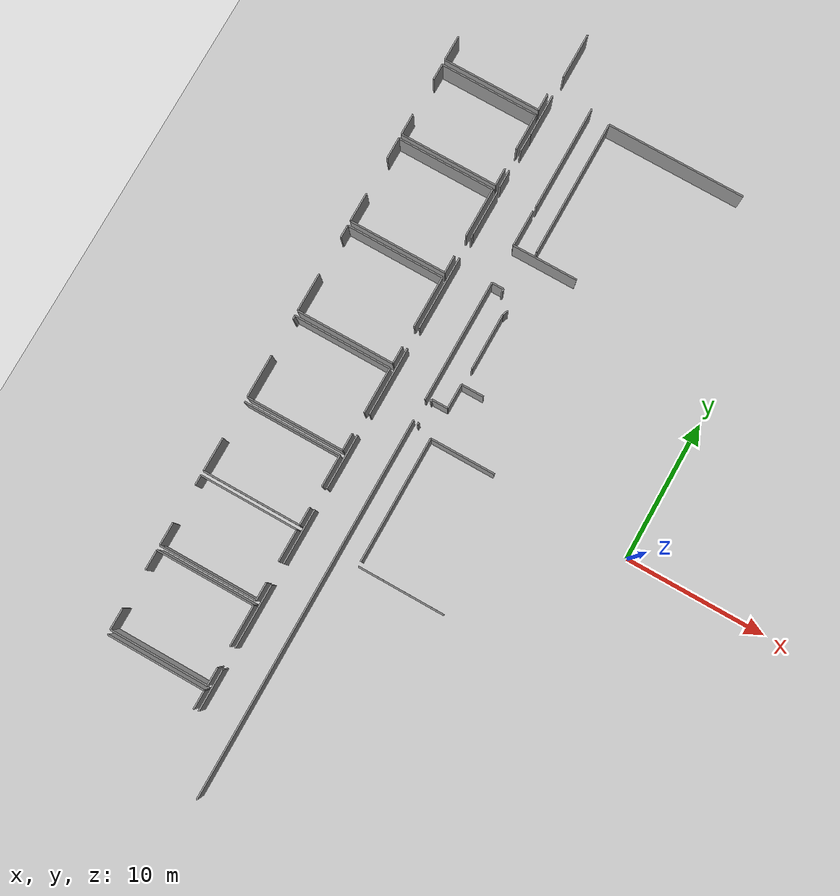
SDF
<sdf version="1.6">
 <world name="default">
  <model name="ground_plane">
   <static>1</static>
   <link name="link">
    <collision name="collision">
     <geometry><plane><normal>0 0 1</normal><size>100 100</size></plane></geometry>
     <surface><friction><ode><mu>100</mu><mu2>50</mu2></ode></friction></surface>
    </collision>
    <visual name="visual">
     <cast_shadows>0</cast_shadows>
     <geometry><plane><normal>0 0 1</normal><size>100 100</size></plane></geometry>
     <material>
      <script><uri>file://media/materials/scripts/gazebo.material</uri><name>Gazebo/Grey</name></script>
     </material>
    </visual>
   </link>
  </model>
  <model name="0510045926_A-40">
   <static>1</static>
   <link name="Wall_1012">
    <collision name="Wall_1012_Collision">
     <geometry><box><size>1.82836981146 0.1 2.5</size></box></geometry>
     <pose>0.914184905732 0 1.25 0 0 0</pose>
    </collision>
    <visual name="Wall_1012_Visual">
     <pose>0.914184905732 0 1.25 0 0 0</pose>
     <geometry><box><size>1.82836981146 0.1 2.5</size></box></geometry>
     <material>
      <script><uri>file://media/materials/scripts/gazebo.material</uri><name>Gazebo/Grey</name></script>
      <ambient>1 1 1 1</ambient>
     </material>
    </visual>
    <pose>107.625086462 -78.3150974407 0 0 0 1.57079632679</pose>
   </link>
   <link name="Wall_1016">
    <collision name="Wall_1016_Collision">
     <geometry><box><size>1.25495770483 0.1 2.5</size></box></geometry>
     <pose>0.627478852414 0 1.25 0 0 0</pose>
    </collision>
    <visual name="Wall_1016_Visual">
     <pose>0.627478852414 0 1.25 0 0 0</pose>
     <geometry><box><size>1.25495770483 0.1 2.5</size></box></geometry>
     <material>
      <script><uri>file://media/materials/scripts/gazebo.material</uri><name>Gazebo/Grey</name></script>
      <ambient>1 1 1 1</ambient>
     </material>
    </visual>
    <pose>114.686254228 -77.0629319152 0 0 0 -1.57079632679</pose>
   </link>
   <link name="Wall_1017">
    <collision name="Wall_1017_Collision">
     <geometry><box><size>7.06116831761 0.1 2.5</size></box></geometry>
     <pose>3.53058415881 0 1.25 0 0 0</pose>
    </collision>
    <visual name="Wall_1017_Visual">
     <pose>3.53058415881 0 1.25 0 0 0</pose>
     <geometry><box><size>7.06116831761 0.1 2.5</size></box></geometry>
     <material>
      <script><uri>file://media/materials/scripts/gazebo.material</uri><name>Gazebo/Grey</name></script>
      <ambient>1 1 1 1</ambient>
     </material>
    </visual>
    <pose>114.686254228 -78.3178896201 0 0 0 3.14119722619</pose>
   </link>
   <link name="Wall_1018">
    <collision name="Wall_1018_Collision">
     <geometry><box><size>1.53087579244 0.1 2.5</size></box></geometry>
     <pose>0.76543789622 0 1.25 0 0 0</pose>
    </collision>
    <visual name="Wall_1018_Visual">
     <pose>0.76543789622 0 1.25 0 0 0</pose>
     <geometry><box><size>1.53087579244 0.1 2.5</size></box></geometry>
     <material>
      <script><uri>file://media/materials/scripts/gazebo.material</uri><name>Gazebo/Grey</name></script>
      <ambient>1 1 1 1</ambient>
     </material>
    </visual>
    <pose>107.644124049 -84.1540521503 0 0 0 1.57079632679</pose>
   </link>
   <link name="Wall_1019">
    <collision name="Wall_1019_Collision">
     <geometry><box><size>1.19378359341 0.1 2.5</size></box></geometry>
     <pose>0.596891796704 0 1.25 0 0 0</pose>
    </collision>
    <visual name="Wall_1019_Visual">
     <pose>0.596891796704 0 1.25 0 0 0</pose>
     <geometry><box><size>1.19378359341 0.1 2.5</size></box></geometry>
     <material>
      <script><uri>file://media/materials/scripts/gazebo.material</uri><name>Gazebo/Grey</name></script>
      <ambient>1 1 1 1</ambient>
     </material>
    </visual>
    <pose>107.644124049 -79.8759257026 0 0 0 1.57079632679</pose>
   </link>
   <link name="Wall_1020">
    <collision name="Wall_1020_Collision">
     <geometry><box><size>7.06269077248 0.1 2.5</size></box></geometry>
     <pose>3.53134538624 0 1.25 0 0 0</pose>
    </collision>
    <visual name="Wall_1020_Visual">
     <pose>3.53134538624 0 1.25 0 0 0</pose>
     <geometry><box><size>7.06269077248 0.1 2.5</size></box></geometry>
     <material>
      <script><uri>file://media/materials/scripts/gazebo.material</uri><name>Gazebo/Grey</name></script>
      <ambient>1 1 1 1</ambient>
     </material>
    </visual>
    <pose>107.644124049 -78.6821421092 0 0 0 0.0</pose>
   </link>
   <link name="Wall_1021">
    <collision name="Wall_1021_Collision">
     <geometry><box><size>2.67617699879 0.1 2.5</size></box></geometry>
     <pose>1.33808849939 0 1.25 0 0 0</pose>
    </collision>
    <visual name="Wall_1021_Visual">
     <pose>1.33808849939 0 1.25 0 0 0</pose>
     <geometry><box><size>2.67617699879 0.1 2.5</size></box></geometry>
     <material>
      <script><uri>file://media/materials/scripts/gazebo.material</uri><name>Gazebo/Grey</name></script>
      <ambient>1 1 1 1</ambient>
     </material>
    </visual>
    <pose>114.706814821 -78.6821421092 0 0 0 -1.57079632679</pose>
   </link>
   <link name="Wall_1022">
    <collision name="Wall_1022_Collision">
     <geometry><box><size>1.27957965009 0.1 2.5</size></box></geometry>
     <pose>0.639789825045 0 1.25 0 0 0</pose>
    </collision>
    <visual name="Wall_1022_Visual">
     <pose>0.639789825045 0 1.25 0 0 0</pose>
     <geometry><box><size>1.27957965009 0.1 2.5</size></box></geometry>
     <material>
      <script><uri>file://media/materials/scripts/gazebo.material</uri><name>Gazebo/Grey</name></script>
      <ambient>1 1 1 1</ambient>
     </material>
    </visual>
    <pose>114.706814821 -82.8792953555 0 0 0 -1.57079632679</pose>
   </link>
   <link name="Wall_1023">
    <collision name="Wall_1023_Collision">
     <geometry><box><size>7.06269241916 0.1 2.5</size></box></geometry>
     <pose>3.53134620958 0 1.25 0 0 0</pose>
    </collision>
    <visual name="Wall_1023_Visual">
     <pose>3.53134620958 0 1.25 0 0 0</pose>
     <geometry><box><size>7.06269241916 0.1 2.5</size></box></geometry>
     <material>
      <script><uri>file://media/materials/scripts/gazebo.material</uri><name>Gazebo/Grey</name></script>
      <ambient>1 1 1 1</ambient>
     </material>
    </visual>
    <pose>114.706814821 -84.1588750056 0 0 0 3.14090978998</pose>
   </link>
   <link name="Wall_1024">
    <collision name="Wall_1024_Collision">
     <geometry><box><size>3.00463882525 0.1 2.5</size></box></geometry>
     <pose>1.50231941263 0 1.25 0 0 0</pose>
    </collision>
    <visual name="Wall_1024_Visual">
     <pose>1.50231941263 0 1.25 0 0 0</pose>
     <geometry><box><size>3.00463882525 0.1 2.5</size></box></geometry>
     <material>
      <script><uri>file://media/materials/scripts/gazebo.material</uri><name>Gazebo/Grey</name></script>
      <ambient>1 1 1 1</ambient>
     </material>
    </visual>
    <pose>115.032992137 -80.0256880501 0 0 0 1.57079632679</pose>
   </link>
   <link name="Wall_1025">
    <collision name="Wall_1025_Collision">
     <geometry><box><size>3.30898637543 0.1 2.5</size></box></geometry>
     <pose>1.65449318772 0 1.25 0 0 0</pose>
    </collision>
    <visual name="Wall_1025_Visual">
     <pose>1.65449318772 0 1.25 0 0 0</pose>
     <geometry><box><size>3.30898637543 0.1 2.5</size></box></geometry>
     <material>
      <script><uri>file://media/materials/scripts/gazebo.material</uri><name>Gazebo/Grey</name></script>
      <ambient>1 1 1 1</ambient>
     </material>
    </visual>
    <pose>115.032992137 -75.5109878604 0 0 0 1.57079632679</pose>
   </link>
   <link name="Wall_1037">
    <collision name="Wall_1037_Collision">
     <geometry><box><size>7.5827976368 0.1 2.5</size></box></geometry>
     <pose>3.7913988184 0 1.25 0 0 0</pose>
    </collision>
    <visual name="Wall_1037_Visual">
     <pose>3.7913988184 0 1.25 0 0 0</pose>
     <geometry><box><size>7.5827976368 0.1 2.5</size></box></geometry>
     <material>
      <script><uri>file://media/materials/scripts/gazebo.material</uri><name>Gazebo/Grey</name></script>
      <ambient>1 1 1 1</ambient>
     </material>
    </visual>
    <pose>117.713230488 -76.5433327199 0 0 0 -1.57079632679</pose>
   </link>
   <link name="Wall_1038">
    <collision name="Wall_1038_Collision">
     <geometry><box><size>1.27881814663 0.1 2.5</size></box></geometry>
     <pose>0.639409073314 0 1.25 0 0 0</pose>
    </collision>
    <visual name="Wall_1038_Visual">
     <pose>0.639409073314 0 1.25 0 0 0</pose>
     <geometry><box><size>1.27881814663 0.1 2.5</size></box></geometry>
     <material>
      <script><uri>file://media/materials/scripts/gazebo.material</uri><name>Gazebo/Grey</name></script>
      <ambient>1 1 1 1</ambient>
     </material>
    </visual>
    <pose>115.005070344 -84.1261303567 0 0 0 1.57079632679</pose>
   </link>
   <link name="Wall_1039">
    <collision name="Wall_1039_Collision">
     <geometry><box><size>1.29840982598 0.1 2.5</size></box></geometry>
     <pose>0.649204912989 0 1.25 0 0 0</pose>
    </collision>
    <visual name="Wall_1039_Visual">
     <pose>0.649204912989 0 1.25 0 0 0</pose>
     <geometry><box><size>1.29840982598 0.1 2.5</size></box></geometry>
     <material>
      <script><uri>file://media/materials/scripts/gazebo.material</uri><name>Gazebo/Grey</name></script>
      <ambient>1 1 1 1</ambient>
     </material>
    </visual>
    <pose>115.005070344 -81.3237976178 0 0 0 1.54929006156</pose>
   </link>
   <link name="Wall_1040">
    <collision name="Wall_1040_Collision">
     <geometry><box><size>9.87314621501 0.1 2.5</size></box></geometry>
     <pose>4.93657310751 0 1.25 0 0 0</pose>
    </collision>
    <visual name="Wall_1040_Visual">
     <pose>4.93657310751 0 1.25 0 0 0</pose>
     <geometry><box><size>9.87314621501 0.1 2.5</size></box></geometry>
     <material>
      <script><uri>file://media/materials/scripts/gazebo.material</uri><name>Gazebo/Grey</name></script>
      <ambient>1 1 1 1</ambient>
     </material>
    </visual>
    <pose>119.211107797 -86.7888541277 0 0 0 1.57079632679</pose>
   </link>
   <link name="Wall_1041">
    <collision name="Wall_1041_Collision">
     <geometry><box><size>9.96808031323 0.1 2.5</size></box></geometry>
     <pose>4.98404015662 0 1.25 0 0 0</pose>
    </collision>
    <visual name="Wall_1041_Visual">
     <pose>4.98404015662 0 1.25 0 0 0</pose>
     <geometry><box><size>9.96808031323 0.1 2.5</size></box></geometry>
     <material>
      <script><uri>file://media/materials/scripts/gazebo.material</uri><name>Gazebo/Grey</name></script>
      <ambient>1 1 1 1</ambient>
     </material>
    </visual>
    <pose>119.211107797 -76.9157079127 0 0 0 0.0</pose>
   </link>
   <link name="Wall_1047">
    <collision name="Wall_1047_Collision">
     <geometry><box><size>2.10631857497 0.1 2.5</size></box></geometry>
     <pose>1.05315928749 0 1.25 0 0 0</pose>
    </collision>
    <visual name="Wall_1047_Visual">
     <pose>1.05315928749 0 1.25 0 0 0</pose>
     <geometry><box><size>2.10631857497 0.1 2.5</size></box></geometry>
     <material>
      <script><uri>file://media/materials/scripts/gazebo.material</uri><name>Gazebo/Grey</name></script>
      <ambient>1 1 1 1</ambient>
     </material>
    </visual>
    <pose>107.642347208 -90.8684820063 0 0 0 1.57079632679</pose>
   </link>
   <link name="Wall_1048">
    <collision name="Wall_1048_Collision">
     <geometry><box><size>1.56869713104 0.1 2.5</size></box></geometry>
     <pose>0.784348565518 0 1.25 0 0 0</pose>
    </collision>
    <visual name="Wall_1048_Visual">
     <pose>0.784348565518 0 1.25 0 0 0</pose>
     <geometry><box><size>1.56869713104 0.1 2.5</size></box></geometry>
     <material>
      <script><uri>file://media/materials/scripts/gazebo.material</uri><name>Gazebo/Grey</name></script>
      <ambient>1 1 1 1</ambient>
     </material>
    </visual>
    <pose>107.642347208 -86.0517187768 0 0 0 1.57079632679</pose>
   </link>
   <link name="Wall_1049">
    <collision name="Wall_1049_Collision">
     <geometry><box><size>7.04517619286 0.1 2.5</size></box></geometry>
     <pose>3.52258809643 0 1.25 0 0 0</pose>
    </collision>
    <visual name="Wall_1049_Visual">
     <pose>3.52258809643 0 1.25 0 0 0</pose>
     <geometry><box><size>7.04517619286 0.1 2.5</size></box></geometry>
     <material>
      <script><uri>file://media/materials/scripts/gazebo.material</uri><name>Gazebo/Grey</name></script>
      <ambient>1 1 1 1</ambient>
     </material>
    </visual>
    <pose>107.642347208 -84.4830216457 0 0 0 0.0</pose>
   </link>
   <link name="Wall_1050">
    <collision name="Wall_1050_Collision">
     <geometry><box><size>3.58642746997 0.1 2.5</size></box></geometry>
     <pose>1.79321373498 0 1.25 0 0 0</pose>
    </collision>
    <visual name="Wall_1050_Visual">
     <pose>1.79321373498 0 1.25 0 0 0</pose>
     <geometry><box><size>3.58642746997 0.1 2.5</size></box></geometry>
     <material>
      <script><uri>file://media/materials/scripts/gazebo.material</uri><name>Gazebo/Grey</name></script>
      <ambient>1 1 1 1</ambient>
     </material>
    </visual>
    <pose>114.6875234 -84.4830216457 0 0 0 -1.57079632679</pose>
   </link>
   <link name="Wall_1051">
    <collision name="Wall_1051_Collision">
     <geometry><box><size>1.26308040842 0.1 2.5</size></box></geometry>
     <pose>0.63154020421 0 1.25 0 0 0</pose>
    </collision>
    <visual name="Wall_1051_Visual">
     <pose>0.63154020421 0 1.25 0 0 0</pose>
     <geometry><box><size>1.26308040842 0.1 2.5</size></box></geometry>
     <material>
      <script><uri>file://media/materials/scripts/gazebo.material</uri><name>Gazebo/Grey</name></script>
      <ambient>1 1 1 1</ambient>
     </material>
    </visual>
    <pose>114.6875234 -89.6054015979 0 0 0 -1.57079632679</pose>
   </link>
   <link name="Wall_1052">
    <collision name="Wall_1052_Collision">
     <geometry><box><size>7.04517619286 0.1 2.5</size></box></geometry>
     <pose>3.52258809643 0 1.25 0 0 0</pose>
    </collision>
    <visual name="Wall_1052_Visual">
     <pose>3.52258809643 0 1.25 0 0 0</pose>
     <geometry><box><size>7.04517619286 0.1 2.5</size></box></geometry>
     <material>
      <script><uri>file://media/materials/scripts/gazebo.material</uri><name>Gazebo/Grey</name></script>
      <ambient>1 1 1 1</ambient>
     </material>
    </visual>
    <pose>114.6875234 -90.8684820063 0 0 0 3.14159265359</pose>
   </link>
   <link name="Wall_1053">
    <collision name="Wall_1053_Collision">
     <geometry><box><size>2.76628824175 0.1 2.5</size></box></geometry>
     <pose>1.38314412088 0 1.25 0 0 0</pose>
    </collision>
    <visual name="Wall_1053_Visual">
     <pose>1.38314412088 0 1.25 0 0 0</pose>
     <geometry><box><size>2.76628824175 0.1 2.5</size></box></geometry>
     <material>
      <script><uri>file://media/materials/scripts/gazebo.material</uri><name>Gazebo/Grey</name></script>
      <ambient>1 1 1 1</ambient>
     </material>
    </visual>
    <pose>107.648439235 -97.6961220436 0 0 0 1.57079632679</pose>
   </link>
   <link name="Wall_1054">
    <collision name="Wall_1054_Collision">
     <geometry><box><size>0.93309557503 0.1 2.5</size></box></geometry>
     <pose>0.466547787515 0 1.25 0 0 0</pose>
    </collision>
    <visual name="Wall_1054_Visual">
     <pose>0.466547787515 0 1.25 0 0 0</pose>
     <geometry><box><size>0.93309557503 0.1 2.5</size></box></geometry>
     <material>
      <script><uri>file://media/materials/scripts/gazebo.material</uri><name>Gazebo/Grey</name></script>
      <ambient>1 1 1 1</ambient>
     </material>
    </visual>
    <pose>107.648439235 -92.145777146 0 0 0 1.57079632679</pose>
   </link>
   <link name="Wall_1055">
    <collision name="Wall_1055_Collision">
     <geometry><box><size>7.0604062621 0.1 2.5</size></box></geometry>
     <pose>3.53020313105 0 1.25 0 0 0</pose>
    </collision>
    <visual name="Wall_1055_Visual">
     <pose>3.53020313105 0 1.25 0 0 0</pose>
     <geometry><box><size>7.0604062621 0.1 2.5</size></box></geometry>
     <material>
      <script><uri>file://media/materials/scripts/gazebo.material</uri><name>Gazebo/Grey</name></script>
      <ambient>1 1 1 1</ambient>
     </material>
    </visual>
    <pose>107.648439235 -91.212681571 0 0 0 0.0</pose>
   </link>
   <link name="Wall_1056">
    <collision name="Wall_1056_Collision">
     <geometry><box><size>3.71588305845 0.1 2.5</size></box></geometry>
     <pose>1.85794152923 0 1.25 0 0 0</pose>
    </collision>
    <visual name="Wall_1056_Visual">
     <pose>1.85794152923 0 1.25 0 0 0</pose>
     <geometry><box><size>3.71588305845 0.1 2.5</size></box></geometry>
     <material>
      <script><uri>file://media/materials/scripts/gazebo.material</uri><name>Gazebo/Grey</name></script>
      <ambient>1 1 1 1</ambient>
     </material>
    </visual>
    <pose>114.708845497 -91.212681571 0 0 0 -1.57079632679</pose>
   </link>
   <link name="Wall_1057">
    <collision name="Wall_1057_Collision">
     <geometry><box><size>1.26282657393 0.1 2.5</size></box></geometry>
     <pose>0.631413286966 0 1.25 0 0 0</pose>
    </collision>
    <visual name="Wall_1057_Visual">
     <pose>0.631413286966 0 1.25 0 0 0</pose>
     <geometry><box><size>1.26282657393 0.1 2.5</size></box></geometry>
     <material>
      <script><uri>file://media/materials/scripts/gazebo.material</uri><name>Gazebo/Grey</name></script>
      <ambient>1 1 1 1</ambient>
     </material>
    </visual>
    <pose>114.708845497 -96.436087649 0 0 0 -1.57079632679</pose>
   </link>
   <link name="Wall_1058">
    <collision name="Wall_1058_Collision">
     <geometry><box><size>7.06040681421 0.1 2.5</size></box></geometry>
     <pose>3.5302034071 0 1.25 0 0 0</pose>
    </collision>
    <visual name="Wall_1058_Visual">
     <pose>3.5302034071 0 1.25 0 0 0</pose>
     <geometry><box><size>7.06040681421 0.1 2.5</size></box></geometry>
     <material>
      <script><uri>file://media/materials/scripts/gazebo.material</uri><name>Gazebo/Grey</name></script>
      <ambient>1 1 1 1</ambient>
     </material>
    </visual>
    <pose>114.708845497 -97.698914223 0 0 0 3.14119718354</pose>
   </link>
   <link name="Wall_1059">
    <collision name="Wall_1059_Collision">
     <geometry><box><size>2.42691153234 0.1 2.5</size></box></geometry>
     <pose>1.21345576617 0 1.25 0 0 0</pose>
    </collision>
    <visual name="Wall_1059_Visual">
     <pose>1.21345576617 0 1.25 0 0 0</pose>
     <geometry><box><size>2.42691153234 0.1 2.5</size></box></geometry>
     <material>
      <script><uri>file://media/materials/scripts/gazebo.material</uri><name>Gazebo/Grey</name></script>
      <ambient>1 1 1 1</ambient>
     </material>
    </visual>
    <pose>107.659354118 -109.60806686 0 0 0 1.57079632679</pose>
   </link>
   <link name="Wall_1060">
    <collision name="Wall_1060_Collision">
     <geometry><box><size>7.04669919979 0.1 2.5</size></box></geometry>
     <pose>3.52334959989 0 1.25 0 0 0</pose>
    </collision>
    <visual name="Wall_1060_Visual">
     <pose>3.52334959989 0 1.25 0 0 0</pose>
     <geometry><box><size>7.04669919979 0.1 2.5</size></box></geometry>
     <material>
      <script><uri>file://media/materials/scripts/gazebo.material</uri><name>Gazebo/Grey</name></script>
      <ambient>1 1 1 1</ambient>
     </material>
    </visual>
    <pose>107.659354118 -104.495840287 0 0 0 0.0</pose>
   </link>
   <link name="Wall_1061">
    <collision name="Wall_1061_Collision">
     <geometry><box><size>2.2885717368 0.1 2.5</size></box></geometry>
     <pose>1.1442858684 0 1.25 0 0 0</pose>
    </collision>
    <visual name="Wall_1061_Visual">
     <pose>1.1442858684 0 1.25 0 0 0</pose>
     <geometry><box><size>2.2885717368 0.1 2.5</size></box></geometry>
     <material>
      <script><uri>file://media/materials/scripts/gazebo.material</uri><name>Gazebo/Grey</name></script>
      <ambient>1 1 1 1</ambient>
     </material>
    </visual>
    <pose>114.706053318 -104.495840287 0 0 0 -1.57079632679</pose>
   </link>
   <link name="Wall_1062">
    <collision name="Wall_1062_Collision">
     <geometry><box><size>1.30902445061 0.1 2.5</size></box></geometry>
     <pose>0.654512225303 0 1.25 0 0 0</pose>
    </collision>
    <visual name="Wall_1062_Visual">
     <pose>0.654512225303 0 1.25 0 0 0</pose>
     <geometry><box><size>1.30902445061 0.1 2.5</size></box></geometry>
     <material>
      <script><uri>file://media/materials/scripts/gazebo.material</uri><name>Gazebo/Grey</name></script>
      <ambient>1 1 1 1</ambient>
     </material>
    </visual>
    <pose>114.706053318 -108.290919706 0 0 0 -1.57079632679</pose>
   </link>
   <link name="Wall_1063">
    <collision name="Wall_1063_Collision">
     <geometry><box><size>7.04670388129 0.1 2.5</size></box></geometry>
     <pose>3.52335194065 0 1.25 0 0 0</pose>
    </collision>
    <visual name="Wall_1063_Visual">
     <pose>3.52335194065 0 1.25 0 0 0</pose>
     <geometry><box><size>7.04670388129 0.1 2.5</size></box></geometry>
     <material>
      <script><uri>file://media/materials/scripts/gazebo.material</uri><name>Gazebo/Grey</name></script>
      <ambient>1 1 1 1</ambient>
     </material>
    </visual>
    <pose>114.706053318 -109.599944156 0 0 0 -3.14043995787</pose>
   </link>
   <link name="Wall_1064">
    <collision name="Wall_1064_Collision">
     <geometry><box><size>1.64307063579 0.1 2.5</size></box></geometry>
     <pose>0.821535317896 0 1.25 0 0 0</pose>
    </collision>
    <visual name="Wall_1064_Visual">
     <pose>0.821535317896 0 1.25 0 0 0</pose>
     <geometry><box><size>1.64307063579 0.1 2.5</size></box></geometry>
     <material>
      <script><uri>file://media/materials/scripts/gazebo.material</uri><name>Gazebo/Grey</name></script>
      <ambient>1 1 1 1</ambient>
     </material>
    </visual>
    <pose>107.653008256 -115.008141741 0 0 0 1.57079632679</pose>
   </link>
   <link name="Wall_1065">
    <collision name="Wall_1065_Collision">
     <geometry><box><size>0.72748964038 0.1 2.5</size></box></geometry>
     <pose>0.36374482019 0 1.25 0 0 0</pose>
    </collision>
    <visual name="Wall_1065_Visual">
     <pose>0.36374482019 0 1.25 0 0 0</pose>
     <geometry><box><size>0.72748964038 0.1 2.5</size></box></geometry>
     <material>
      <script><uri>file://media/materials/scripts/gazebo.material</uri><name>Gazebo/Grey</name></script>
      <ambient>1 1 1 1</ambient>
     </material>
    </visual>
    <pose>107.653008256 -110.643965402 0 0 0 1.57079632679</pose>
   </link>
   <link name="Wall_1066">
    <collision name="Wall_1066_Collision">
     <geometry><box><size>7.04213017902 0.1 2.5</size></box></geometry>
     <pose>3.52106508951 0 1.25 0 0 0</pose>
    </collision>
    <visual name="Wall_1066_Visual">
     <pose>3.52106508951 0 1.25 0 0 0</pose>
     <geometry><box><size>7.04213017902 0.1 2.5</size></box></geometry>
     <material>
      <script><uri>file://media/materials/scripts/gazebo.material</uri><name>Gazebo/Grey</name></script>
      <ambient>1 1 1 1</ambient>
     </material>
    </visual>
    <pose>107.653008256 -109.916475762 0 0 0 0.0</pose>
   </link>
   <link name="Wall_1067">
    <collision name="Wall_1067_Collision">
     <geometry><box><size>2.31141684065 0.1 2.5</size></box></geometry>
     <pose>1.15570842032 0 1.25 0 0 0</pose>
    </collision>
    <visual name="Wall_1067_Visual">
     <pose>1.15570842032 0 1.25 0 0 0</pose>
     <geometry><box><size>2.31141684065 0.1 2.5</size></box></geometry>
     <material>
      <script><uri>file://media/materials/scripts/gazebo.material</uri><name>Gazebo/Grey</name></script>
      <ambient>1 1 1 1</ambient>
     </material>
    </visual>
    <pose>114.695138435 -109.916475762 0 0 0 -1.57079632679</pose>
   </link>
   <link name="Wall_1068">
    <collision name="Wall_1068_Collision">
     <geometry><box><size>1.28364100188 0.1 2.5</size></box></geometry>
     <pose>0.641820500942 0 1.25 0 0 0</pose>
    </collision>
    <visual name="Wall_1068_Visual">
     <pose>0.641820500942 0 1.25 0 0 0</pose>
     <geometry><box><size>1.28364100188 0.1 2.5</size></box></geometry>
     <material>
      <script><uri>file://media/materials/scripts/gazebo.material</uri><name>Gazebo/Grey</name></script>
      <ambient>1 1 1 1</ambient>
     </material>
    </visual>
    <pose>114.695138435 -113.72399307 0 0 0 -1.57079632679</pose>
   </link>
   <link name="Wall_1069">
    <collision name="Wall_1069_Collision">
     <geometry><box><size>7.04213019732 0.1 2.5</size></box></geometry>
     <pose>3.52106509866 0 1.25 0 0 0</pose>
    </collision>
    <visual name="Wall_1069_Visual">
     <pose>3.52106509866 0 1.25 0 0 0</pose>
     <geometry><box><size>7.04213019732 0.1 2.5</size></box></geometry>
     <material>
      <script><uri>file://media/materials/scripts/gazebo.material</uri><name>Gazebo/Grey</name></script>
      <ambient>1 1 1 1</ambient>
     </material>
    </visual>
    <pose>114.695138435 -115.007634072 0 0 0 -3.14152056333</pose>
   </link>
   <link name="Wall_1070">
    <collision name="Wall_1070_Collision">
     <geometry><box><size>1.52554526821 0.1 2.5</size></box></geometry>
     <pose>0.762772634104 0 1.25 0 0 0</pose>
    </collision>
    <visual name="Wall_1070_Visual">
     <pose>0.762772634104 0 1.25 0 0 0</pose>
     <geometry><box><size>1.52554526821 0.1 2.5</size></box></geometry>
     <material>
      <script><uri>file://media/materials/scripts/gazebo.material</uri><name>Gazebo/Grey</name></script>
      <ambient>1 1 1 1</ambient>
     </material>
    </visual>
    <pose>107.656561939 -121.031380288 0 0 0 1.57079632679</pose>
   </link>
   <link name="Wall_1071">
    <collision name="Wall_1071_Collision">
     <geometry><box><size>1.42959583204 0.1 2.5</size></box></geometry>
     <pose>0.714797916019 0 1.25 0 0 0</pose>
    </collision>
    <visual name="Wall_1071_Visual">
     <pose>0.714797916019 0 1.25 0 0 0</pose>
     <geometry><box><size>1.42959583204 0.1 2.5</size></box></geometry>
     <material>
      <script><uri>file://media/materials/scripts/gazebo.material</uri><name>Gazebo/Grey</name></script>
      <ambient>1 1 1 1</ambient>
     </material>
    </visual>
    <pose>107.656561939 -116.773306765 0 0 0 1.57079632679</pose>
   </link>
   <link name="Wall_1072">
    <collision name="Wall_1072_Collision">
     <geometry><box><size>7.06015242761 0.1 2.5</size></box></geometry>
     <pose>3.5300762138 0 1.25 0 0 0</pose>
    </collision>
    <visual name="Wall_1072_Visual">
     <pose>3.5300762138 0 1.25 0 0 0</pose>
     <geometry><box><size>7.06015242761 0.1 2.5</size></box></geometry>
     <material>
      <script><uri>file://media/materials/scripts/gazebo.material</uri><name>Gazebo/Grey</name></script>
      <ambient>1 1 1 1</ambient>
     </material>
    </visual>
    <pose>107.656561939 -115.343710933 0 0 0 0.0</pose>
   </link>
   <link name="Wall_1073">
    <collision name="Wall_1073_Collision">
     <geometry><box><size>2.9142737478 0.1 2.5</size></box></geometry>
     <pose>1.4571368739 0 1.25 0 0 0</pose>
    </collision>
    <visual name="Wall_1073_Visual">
     <pose>1.4571368739 0 1.25 0 0 0</pose>
     <geometry><box><size>2.9142737478 0.1 2.5</size></box></geometry>
     <material>
      <script><uri>file://media/materials/scripts/gazebo.material</uri><name>Gazebo/Grey</name></script>
      <ambient>1 1 1 1</ambient>
     </material>
    </visual>
    <pose>114.716714366 -115.343710933 0 0 0 -1.57079632679</pose>
   </link>
   <link name="Wall_1074">
    <collision name="Wall_1074_Collision">
     <geometry><box><size>1.27754897419 0.1 2.5</size></box></geometry>
     <pose>0.638774487096 0 1.25 0 0 0</pose>
    </collision>
    <visual name="Wall_1074_Visual">
     <pose>0.638774487096 0 1.25 0 0 0</pose>
     <geometry><box><size>1.27754897419 0.1 2.5</size></box></geometry>
     <material>
      <script><uri>file://media/materials/scripts/gazebo.material</uri><name>Gazebo/Grey</name></script>
      <ambient>1 1 1 1</ambient>
     </material>
    </visual>
    <pose>114.716714366 -119.74621628 0 0 0 -1.57079632679</pose>
   </link>
   <link name="Wall_1075">
    <collision name="Wall_1075_Collision">
     <geometry><box><size>7.06015653437 0.1 2.5</size></box></geometry>
     <pose>3.53007826719 0 1.25 0 0 0</pose>
    </collision>
    <visual name="Wall_1075_Visual">
     <pose>3.53007826719 0 1.25 0 0 0</pose>
     <geometry><box><size>7.06015653437 0.1 2.5</size></box></geometry>
     <material>
      <script><uri>file://media/materials/scripts/gazebo.material</uri><name>Gazebo/Grey</name></script>
      <ambient>1 1 1 1</ambient>
     </material>
    </visual>
    <pose>114.716714366 -121.023765254 0 0 0 -3.14051406049</pose>
   </link>
   <link name="Wall_1078">
    <collision name="Wall_1078_Collision">
     <geometry><box><size>7.04999904812 0.1 2.5</size></box></geometry>
     <pose>3.52499952406 0 1.25 0 0 0</pose>
    </collision>
    <visual name="Wall_1078_Visual">
     <pose>3.52499952406 0 1.25 0 0 0</pose>
     <geometry><box><size>7.04999904812 0.1 2.5</size></box></geometry>
     <material>
      <script><uri>file://media/materials/scripts/gazebo.material</uri><name>Gazebo/Grey</name></script>
      <ambient>1 1 1 1</ambient>
     </material>
    </visual>
    <pose>107.652246753 -121.369995494 0 0 0 0.0</pose>
   </link>
   <link name="Wall_1079">
    <collision name="Wall_1079_Collision">
     <geometry><box><size>1.31232429894 0.1 2.5</size></box></geometry>
     <pose>0.65616214947 0 1.25 0 0 0</pose>
    </collision>
    <visual name="Wall_1079_Visual">
     <pose>0.65616214947 0 1.25 0 0 0</pose>
     <geometry><box><size>1.31232429894 0.1 2.5</size></box></geometry>
     <material>
      <script><uri>file://media/materials/scripts/gazebo.material</uri><name>Gazebo/Grey</name></script>
      <ambient>1 1 1 1</ambient>
     </material>
    </visual>
    <pose>114.702245801 -121.369995494 0 0 0 -1.57079632679</pose>
   </link>
   <link name="Wall_1082">
    <collision name="Wall_1082_Collision">
     <geometry><box><size>1.62352538028 0.1 2.5</size></box></geometry>
     <pose>0.811762690138 0 1.25 0 0 0</pose>
    </collision>
    <visual name="Wall_1082_Visual">
     <pose>0.811762690138 0 1.25 0 0 0</pose>
     <geometry><box><size>1.62352538028 0.1 2.5</size></box></geometry>
     <material>
      <script><uri>file://media/materials/scripts/gazebo.material</uri><name>Gazebo/Grey</name></script>
      <ambient>1 1 1 1</ambient>
     </material>
    </visual>
    <pose>119.208569452 -96.724697461 0 0 0 0.0</pose>
   </link>
   <link name="Wall_1085">
    <collision name="Wall_1085_Collision">
     <geometry><box><size>0.18555301016 0.1 2.5</size></box></geometry>
     <pose>0.0927765050799 0 1.25 0 0 0</pose>
    </collision>
    <visual name="Wall_1085_Visual">
     <pose>0.0927765050799 0 1.25 0 0 0</pose>
     <geometry><box><size>0.18555301016 0.1 2.5</size></box></geometry>
     <material>
      <script><uri>file://media/materials/scripts/gazebo.material</uri><name>Gazebo/Grey</name></script>
      <ambient>1 1 1 1</ambient>
     </material>
    </visual>
    <pose>118.045753666 -100.392098132 0 0 0 1.57079632679</pose>
   </link>
   <link name="Wall_1086">
    <collision name="Wall_1086_Collision">
     <geometry><box><size>0.161438733874 0.1 2.5</size></box></geometry>
     <pose>0.0807193669368 0 1.25 0 0 0</pose>
    </collision>
    <visual name="Wall_1086_Visual">
     <pose>0.0807193669368 0 1.25 0 0 0</pose>
     <geometry><box><size>0.161438733874 0.1 2.5</size></box></geometry>
     <material>
      <script><uri>file://media/materials/scripts/gazebo.material</uri><name>Gazebo/Grey</name></script>
      <ambient>1 1 1 1</ambient>
     </material>
    </visual>
    <pose>118.045753666 -98.6639929434 0 0 0 1.57079632679</pose>
   </link>
   <link name="Wall_1087">
    <collision name="Wall_1087_Collision">
     <geometry><box><size>1.15393157891 0.1 2.5</size></box></geometry>
     <pose>0.576965789457 0 1.25 0 0 0</pose>
    </collision>
    <visual name="Wall_1087_Visual">
     <pose>0.576965789457 0 1.25 0 0 0</pose>
     <geometry><box><size>1.15393157891 0.1 2.5</size></box></geometry>
     <material>
      <script><uri>file://media/materials/scripts/gazebo.material</uri><name>Gazebo/Grey</name></script>
      <ambient>1 1 1 1</ambient>
     </material>
    </visual>
    <pose>118.045753666 -98.5025542095 0 0 0 0.0</pose>
   </link>
   <link name="Wall_1088">
    <collision name="Wall_1088_Collision">
     <geometry><box><size>1.7778789462 0.1 2.5</size></box></geometry>
     <pose>0.888939473101 0 1.25 0 0 0</pose>
    </collision>
    <visual name="Wall_1088_Visual">
     <pose>0.888939473101 0 1.25 0 0 0</pose>
     <geometry><box><size>1.7778789462 0.1 2.5</size></box></geometry>
     <material>
      <script><uri>file://media/materials/scripts/gazebo.material</uri><name>Gazebo/Grey</name></script>
      <ambient>1 1 1 1</ambient>
     </material>
    </visual>
    <pose>119.199685245 -98.5025542095 0 0 0 1.5657992239</pose>
   </link>
   <link name="Wall_1093">
    <collision name="Wall_1093_Collision">
     <geometry><box><size>4.07988171313 0.1 2.5</size></box></geometry>
     <pose>2.03994085656 0 1.25 0 0 0</pose>
    </collision>
    <visual name="Wall_1093_Visual">
     <pose>2.03994085656 0 1.25 0 0 0</pose>
     <geometry><box><size>4.07988171313 0.1 2.5</size></box></geometry>
     <material>
      <script><uri>file://media/materials/scripts/gazebo.material</uri><name>Gazebo/Grey</name></script>
      <ambient>1 1 1 1</ambient>
     </material>
    </visual>
    <pose>119.306041895 -95.5514744611 0 0 0 1.57079632679</pose>
   </link>
   <link name="Wall_1094">
    <collision name="Wall_1094_Collision">
     <geometry><box><size>0.45225356572 0.1 2.5</size></box></geometry>
     <pose>0.22612678286 0 1.25 0 0 0</pose>
    </collision>
    <visual name="Wall_1094_Visual">
     <pose>0.22612678286 0 1.25 0 0 0</pose>
     <geometry><box><size>0.45225356572 0.1 2.5</size></box></geometry>
     <material>
      <script><uri>file://media/materials/scripts/gazebo.material</uri><name>Gazebo/Grey</name></script>
      <ambient>1 1 1 1</ambient>
     </material>
    </visual>
    <pose>119.306041895 -91.4715927479 0 0 0 1.20217181701</pose>
   </link>
   <link name="Wall_1111">
    <collision name="Wall_1111_Collision">
     <geometry><box><size>3.29756382351 0.1 2.5</size></box></geometry>
     <pose>1.64878191175 0 1.25 0 0 0</pose>
    </collision>
    <visual name="Wall_1111_Visual">
     <pose>1.64878191175 0 1.25 0 0 0</pose>
     <geometry><box><size>3.29756382351 0.1 2.5</size></box></geometry>
     <material>
      <script><uri>file://media/materials/scripts/gazebo.material</uri><name>Gazebo/Grey</name></script>
      <ambient>1 1 1 1</ambient>
     </material>
    </visual>
    <pose>115.027661613 -87.7780471244 0 0 0 1.57079632679</pose>
   </link>
   <link name="Wall_1112">
    <collision name="Wall_1112_Collision">
     <geometry><box><size>2.62337942545 0.1 2.5</size></box></geometry>
     <pose>1.31168971272 0 1.25 0 0 0</pose>
    </collision>
    <visual name="Wall_1112_Visual">
     <pose>1.31168971272 0 1.25 0 0 0</pose>
     <geometry><box><size>2.62337942545 0.1 2.5</size></box></geometry>
     <material>
      <script><uri>file://media/materials/scripts/gazebo.material</uri><name>Gazebo/Grey</name></script>
      <ambient>1 1 1 1</ambient>
     </material>
    </visual>
    <pose>117.683531853 -84.4804833009 0 0 0 -1.57079632679</pose>
   </link>
   <link name="Wall_1113">
    <collision name="Wall_1113_Collision">
     <geometry><box><size>4.68299245477 0.1 2.5</size></box></geometry>
     <pose>2.34149622738 0 1.25 0 0 0</pose>
    </collision>
    <visual name="Wall_1113_Visual">
     <pose>2.34149622738 0 1.25 0 0 0</pose>
     <geometry><box><size>4.68299245477 0.1 2.5</size></box></geometry>
     <material>
      <script><uri>file://media/materials/scripts/gazebo.material</uri><name>Gazebo/Grey</name></script>
      <ambient>1 1 1 1</ambient>
     </material>
    </visual>
    <pose>117.683531853 -87.1038627263 0 0 0 0.0</pose>
   </link>
   <link name="Wall_1123">
    <collision name="Wall_1123_Collision">
     <geometry><box><size>0.1946910517 0.1 2.5</size></box></geometry>
     <pose>0.0973455258499 0 1.25 0 0 0</pose>
    </collision>
    <visual name="Wall_1123_Visual">
     <pose>0.0973455258499 0 1.25 0 0 0</pose>
     <geometry><box><size>0.1946910517 0.1 2.5</size></box></geometry>
     <material>
      <script><uri>file://media/materials/scripts/gazebo.material</uri><name>Gazebo/Grey</name></script>
      <ambient>1 1 1 1</ambient>
     </material>
    </visual>
    <pose>118.532862047 -90.1478458971 0 0 0 1.57079632679</pose>
   </link>
   <link name="Wall_1124">
    <collision name="Wall_1124_Collision">
     <geometry><box><size>0.863544925531 0.1 2.5</size></box></geometry>
     <pose>0.431772462766 0 1.25 0 0 0</pose>
    </collision>
    <visual name="Wall_1124_Visual">
     <pose>0.431772462766 0 1.25 0 0 0</pose>
     <geometry><box><size>0.863544925531 0.1 2.5</size></box></geometry>
     <material>
      <script><uri>file://media/materials/scripts/gazebo.material</uri><name>Gazebo/Grey</name></script>
      <ambient>1 1 1 1</ambient>
     </material>
    </visual>
    <pose>118.532862047 -89.9531548454 0 0 0 3.14159265359</pose>
   </link>
   <link name="Wall_1125">
    <collision name="Wall_1125_Collision">
     <geometry><box><size>8.77023536803 0.1 2.5</size></box></geometry>
     <pose>4.38511768401 0 1.25 0 0 0</pose>
    </collision>
    <visual name="Wall_1125_Visual">
     <pose>4.38511768401 0 1.25 0 0 0</pose>
     <geometry><box><size>8.77023536803 0.1 2.5</size></box></geometry>
     <material>
      <script><uri>file://media/materials/scripts/gazebo.material</uri><name>Gazebo/Grey</name></script>
      <ambient>1 1 1 1</ambient>
     </material>
    </visual>
    <pose>117.669317122 -89.9531548454 0 0 0 -1.57079632679</pose>
   </link>
   <link name="Wall_1126">
    <collision name="Wall_1126_Collision">
     <geometry><box><size>27.0833782832 0.1 2.5</size></box></geometry>
     <pose>13.5416891416 0 1.25 0 0 0</pose>
    </collision>
    <visual name="Wall_1126_Visual">
     <pose>13.5416891416 0 1.25 0 0 0</pose>
     <geometry><box><size>27.0833782832 0.1 2.5</size></box></geometry>
     <material>
      <script><uri>file://media/materials/scripts/gazebo.material</uri><name>Gazebo/Grey</name></script>
      <ambient>1 1 1 1</ambient>
     </material>
    </visual>
    <pose>117.669317122 -100.218729178 0 0 0 -1.57079632679</pose>
   </link>
   <link name="Wall_1129">
    <collision name="Wall_1129_Collision">
     <geometry><box><size>2.92265028588 0.1 2.5</size></box></geometry>
     <pose>1.46132514294 0 1.25 0 0 0</pose>
    </collision>
    <visual name="Wall_1129_Visual">
     <pose>1.46132514294 0 1.25 0 0 0</pose>
     <geometry><box><size>2.92265028588 0.1 2.5</size></box></geometry>
     <material>
      <script><uri>file://media/materials/scripts/gazebo.material</uri><name>Gazebo/Grey</name></script>
      <ambient>1 1 1 1</ambient>
     </material>
    </visual>
    <pose>115.039845669 -122.628760717 0 0 0 1.57079632679</pose>
   </link>
   <link name="Wall_1130">
    <collision name="Wall_1130_Collision">
     <geometry><box><size>4.52231522436 0.1 2.5</size></box></geometry>
     <pose>2.26115761218 0 1.25 0 0 0</pose>
    </collision>
    <visual name="Wall_1130_Visual">
     <pose>2.26115761218 0 1.25 0 0 0</pose>
     <geometry><box><size>4.52231522436 0.1 2.5</size></box></geometry>
     <material>
      <script><uri>file://media/materials/scripts/gazebo.material</uri><name>Gazebo/Grey</name></script>
      <ambient>1 1 1 1</ambient>
     </material>
    </visual>
    <pose>115.039845669 -118.19909508 0 0 0 1.57079632679</pose>
   </link>
   <link name="Wall_1131">
    <collision name="Wall_1131_Collision">
     <geometry><box><size>3.90219757207 0.1 2.5</size></box></geometry>
     <pose>1.95109878604 0 1.25 0 0 0</pose>
    </collision>
    <visual name="Wall_1131_Visual">
     <pose>1.95109878604 0 1.25 0 0 0</pose>
     <geometry><box><size>3.90219757207 0.1 2.5</size></box></geometry>
     <material>
      <script><uri>file://media/materials/scripts/gazebo.material</uri><name>Gazebo/Grey</name></script>
      <ambient>1 1 1 1</ambient>
     </material>
    </visual>
    <pose>115.039845669 -112.175095029 0 0 0 1.57079632679</pose>
   </link>
   <link name="Wall_1132">
    <collision name="Wall_1132_Collision">
     <geometry><box><size>3.92199666208 0.1 2.5</size></box></geometry>
     <pose>1.96099833104 0 1.25 0 0 0</pose>
    </collision>
    <visual name="Wall_1132_Visual">
     <pose>1.96099833104 0 1.25 0 0 0</pose>
     <geometry><box><size>3.92199666208 0.1 2.5</size></box></geometry>
     <material>
      <script><uri>file://media/materials/scripts/gazebo.material</uri><name>Gazebo/Grey</name></script>
      <ambient>1 1 1 1</ambient>
     </material>
    </visual>
    <pose>115.039845669 -106.739229485 0 0 0 1.57079632679</pose>
   </link>
   <link name="Wall_1133">
    <collision name="Wall_1133_Collision">
     <geometry><box><size>4.9147433416 0.1 2.5</size></box></geometry>
     <pose>2.4573716708 0 1.25 0 0 0</pose>
    </collision>
    <visual name="Wall_1133_Visual">
     <pose>2.4573716708 0 1.25 0 0 0</pose>
     <geometry><box><size>4.9147433416 0.1 2.5</size></box></geometry>
     <material>
      <script><uri>file://media/materials/scripts/gazebo.material</uri><name>Gazebo/Grey</name></script>
      <ambient>1 1 1 1</ambient>
     </material>
    </visual>
    <pose>115.039845669 -101.303871611 0 0 0 1.57079632679</pose>
   </link>
   <link name="Wall_1134">
    <collision name="Wall_1134_Collision">
     <geometry><box><size>5.31047130718 0.1 2.5</size></box></geometry>
     <pose>2.65523565359 0 1.25 0 0 0</pose>
    </collision>
    <visual name="Wall_1134_Visual">
     <pose>2.65523565359 0 1.25 0 0 0</pose>
     <geometry><box><size>5.31047130718 0.1 2.5</size></box></geometry>
     <material>
      <script><uri>file://media/materials/scripts/gazebo.material</uri><name>Gazebo/Grey</name></script>
      <ambient>1 1 1 1</ambient>
     </material>
    </visual>
    <pose>115.039845669 -94.8577448075 0 0 0 1.57079632679</pose>
   </link>
   <link name="Wall_1135">
    <collision name="Wall_1135_Collision">
     <geometry><box><size>0.249056003766 0.1 2.5</size></box></geometry>
     <pose>0.124528001883 0 1.25 0 0 0</pose>
    </collision>
    <visual name="Wall_1135_Visual">
     <pose>0.124528001883 0 1.25 0 0 0</pose>
     <geometry><box><size>0.249056003766 0.1 2.5</size></box></geometry>
     <material>
      <script><uri>file://media/materials/scripts/gazebo.material</uri><name>Gazebo/Grey</name></script>
      <ambient>1 1 1 1</ambient>
     </material>
    </visual>
    <pose>115.039845669 -88.0268049219 0 0 0 1.61973680756</pose>
   </link>
   <link name="Wall_1156">
    <collision name="Wall_1156_Collision">
     <geometry><box><size>6.1922923158 0.1 2.5</size></box></geometry>
     <pose>3.0961461579 0 1.25 0 0 0</pose>
    </collision>
    <visual name="Wall_1156_Visual">
     <pose>3.0961461579 0 1.25 0 0 0</pose>
     <geometry><box><size>6.1922923158 0.1 2.5</size></box></geometry>
     <material>
      <script><uri>file://media/materials/scripts/gazebo.material</uri><name>Gazebo/Grey</name></script>
      <ambient>1 1 1 1</ambient>
     </material>
    </visual>
    <pose>119.226591701 -110.030193612 0 0 0 0.0</pose>
   </link>
   <link name="Wall_1164">
    <collision name="Wall_1164_Collision">
     <geometry><box><size>8.95198086088 0.1 2.5</size></box></geometry>
     <pose>4.47599043044 0 1.25 0 0 0</pose>
    </collision>
    <visual name="Wall_1164_Visual">
     <pose>4.47599043044 0 1.25 0 0 0</pose>
     <geometry><box><size>8.95198086088 0.1 2.5</size></box></geometry>
     <material>
      <script><uri>file://media/materials/scripts/gazebo.material</uri><name>Gazebo/Grey</name></script>
      <ambient>1 1 1 1</ambient>
     </material>
    </visual>
    <pose>119.20958479 -109.678632847 0 0 0 1.57079632679</pose>
   </link>
   <link name="Wall_1165">
    <collision name="Wall_1165_Collision">
     <geometry><box><size>4.66217802682 0.1 2.5</size></box></geometry>
     <pose>2.33108901341 0 1.25 0 0 0</pose>
    </collision>
    <visual name="Wall_1165_Visual">
     <pose>2.33108901341 0 1.25 0 0 0</pose>
     <geometry><box><size>4.66217802682 0.1 2.5</size></box></geometry>
     <material>
      <script><uri>file://media/materials/scripts/gazebo.material</uri><name>Gazebo/Grey</name></script>
      <ambient>1 1 1 1</ambient>
     </material>
    </visual>
    <pose>119.20958479 -100.726651987 0 0 0 0.0</pose>
   </link>
   <link name="Wall_1276">
    <collision name="Wall_1276_Collision">
     <geometry><box><size>3.09957292348 0.1 2.5</size></box></geometry>
     <pose>1.54978646174 0 1.25 0 0 0</pose>
    </collision>
    <visual name="Wall_1276_Visual">
     <pose>1.54978646174 0 1.25 0 0 0</pose>
     <geometry><box><size>3.09957292348 0.1 2.5</size></box></geometry>
     <material>
      <script><uri>file://media/materials/scripts/gazebo.material</uri><name>Gazebo/Grey</name></script>
      <ambient>1 1 1 1</ambient>
     </material>
    </visual>
    <pose>107.663923139 -104.149102378 0 0 0 1.57079632679</pose>
   </link>
   <link name="Wall_1277">
    <collision name="Wall_1277_Collision">
     <geometry><box><size>0.276425756585 0.1 2.5</size></box></geometry>
     <pose>0.138212878293 0 1.25 0 0 0</pose>
    </collision>
    <visual name="Wall_1277_Visual">
     <pose>0.138212878293 0 1.25 0 0 0</pose>
     <geometry><box><size>0.276425756585 0.1 2.5</size></box></geometry>
     <material>
      <script><uri>file://media/materials/scripts/gazebo.material</uri><name>Gazebo/Grey</name></script>
      <ambient>1 1 1 1</ambient>
     </material>
    </visual>
    <pose>107.663923139 -98.3375617928 0 0 0 1.57079632679</pose>
   </link>
   <link name="Wall_1278">
    <collision name="Wall_1278_Collision">
     <geometry><box><size>7.03476897889 0.1 2.5</size></box></geometry>
     <pose>3.51738448944 0 1.25 0 0 0</pose>
    </collision>
    <visual name="Wall_1278_Visual">
     <pose>3.51738448944 0 1.25 0 0 0</pose>
     <geometry><box><size>7.03476897889 0.1 2.5</size></box></geometry>
     <material>
      <script><uri>file://media/materials/scripts/gazebo.material</uri><name>Gazebo/Grey</name></script>
      <ambient>1 1 1 1</ambient>
     </material>
    </visual>
    <pose>107.663923139 -98.0611360362 0 0 0 0.0</pose>
   </link>
   <link name="Wall_1279">
    <collision name="Wall_1279_Collision">
     <geometry><box><size>3.32117043082 0.1 2.5</size></box></geometry>
     <pose>1.66058521541 0 1.25 0 0 0</pose>
    </collision>
    <visual name="Wall_1279_Visual">
     <pose>1.66058521541 0 1.25 0 0 0</pose>
     <geometry><box><size>3.32117043082 0.1 2.5</size></box></geometry>
     <material>
      <script><uri>file://media/materials/scripts/gazebo.material</uri><name>Gazebo/Grey</name></script>
      <ambient>1 1 1 1</ambient>
     </material>
    </visual>
    <pose>114.698692118 -98.0611360362 0 0 0 -1.57079632679</pose>
   </link>
   <link name="Wall_1280">
    <collision name="Wall_1280_Collision">
     <geometry><box><size>1.25673454624 0.1 2.5</size></box></geometry>
     <pose>0.62836727312 0 1.25 0 0 0</pose>
    </collision>
    <visual name="Wall_1280_Visual">
     <pose>0.62836727312 0 1.25 0 0 0</pose>
     <geometry><box><size>1.25673454624 0.1 2.5</size></box></geometry>
     <material>
      <script><uri>file://media/materials/scripts/gazebo.material</uri><name>Gazebo/Grey</name></script>
      <ambient>1 1 1 1</ambient>
     </material>
    </visual>
    <pose>114.698692118 -102.889575652 0 0 0 -1.57079632679</pose>
   </link>
   <link name="Wall_1281">
    <collision name="Wall_1281_Collision">
     <geometry><box><size>7.03476953301 0.1 2.5</size></box></geometry>
     <pose>3.51738476651 0 1.25 0 0 0</pose>
    </collision>
    <visual name="Wall_1281_Visual">
     <pose>3.51738476651 0 1.25 0 0 0</pose>
     <geometry><box><size>7.03476953301 0.1 2.5</size></box></geometry>
     <material>
      <script><uri>file://media/materials/scripts/gazebo.material</uri><name>Gazebo/Grey</name></script>
      <ambient>1 1 1 1</ambient>
     </material>
    </visual>
    <pose>114.698692118 -104.146310198 0 0 0 -3.1411957423</pose>
   </link>
   <pose>-133.95 101.113233661 0 0 0 0</pose>
  </model>
 </world>
</sdf>
